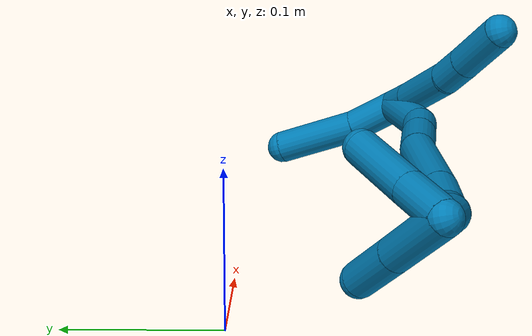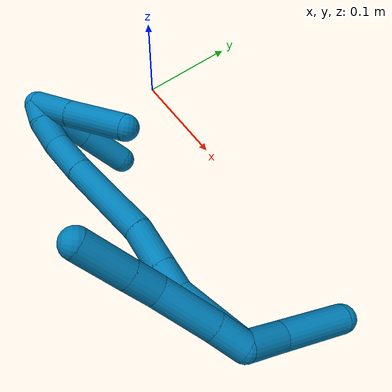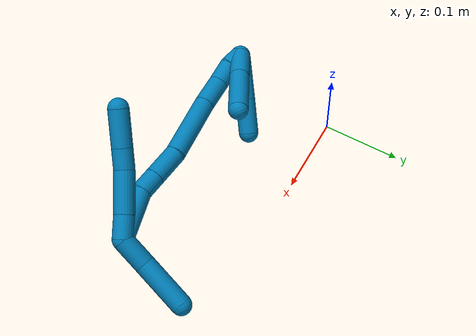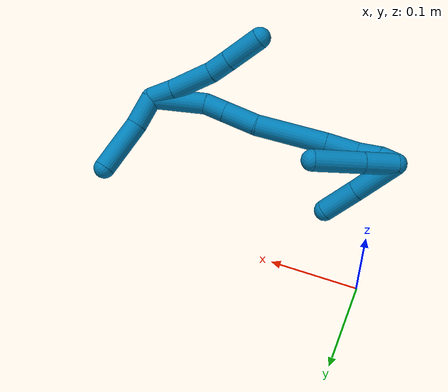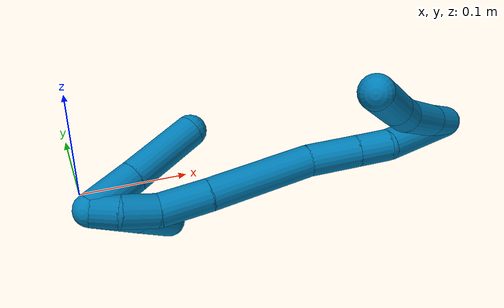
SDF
<sdf version="1.7">
 <world name="default">
  <model name="9">
   <static>0</static>
   <link name="9">
    <collision name="collision-cylinder-e_1_2_8">
     <pose>-0.005583 -0.004019 -0.012532 2.83126 -0.40117 -1.83006</pose>
     <geometry><cylinder><radius>0.0125</radius><length>0.028592</length></cylinder></geometry>
     <surface>
      <friction><ode><mu>1.16</mu><mu2>1.16</mu2><slip1>0</slip1><slip2>0</slip2></ode></friction>
      <contact><ode><kp>1e+06</kp><kd>1</kd><max_vel>0</max_vel><min_depth>0.001</min_depth></ode></contact>
     </surface>
    </collision>
    <visual name="visual-cylinder-e_1_2_8">
     <pose>-0.005583 -0.004019 -0.012532 2.83126 -0.40117 -1.83006</pose>
     <geometry><cylinder><radius>0.0125</radius><length>0.028592</length></cylinder></geometry>
     <material><ambient>0 0.490196 0.709804 1</ambient></material>
    </visual>
    <collision name="collision-cylinder-e_2_8_9">
     <pose>-0.019502 -0.015742 -0.048061 2.81836 -0.331111 -1.5953</pose>
     <geometry><cylinder><radius>0.0125</radius><length>0.051291</length></cylinder></geometry>
     <surface>
      <friction><ode><mu>1.16</mu><mu2>1.16</mu2><slip1>0</slip1><slip2>0</slip2></ode></friction>
      <contact><ode><kp>1e+06</kp><kd>1</kd><max_vel>0</max_vel><min_depth>0.001</min_depth></ode></contact>
     </surface>
    </collision>
    <visual name="visual-cylinder-e_2_8_9">
     <pose>-0.019502 -0.015742 -0.048061 2.81836 -0.331111 -1.5953</pose>
     <geometry><cylinder><radius>0.0125</radius><length>0.051291</length></cylinder></geometry>
     <material><ambient>0 0.490196 0.709804 1</ambient></material>
    </visual>
    <collision name="collision-cylinder-e_3_9_10">
     <pose>-0.030087 -0.028365 -0.082525 2.73633 -0.178173 -0.820227</pose>
     <geometry><cylinder><radius>0.0125</radius><length>0.025357</length></cylinder></geometry>
     <surface>
      <friction><ode><mu>1.16</mu><mu2>1.16</mu2><slip1>0</slip1><slip2>0</slip2></ode></friction>
      <contact><ode><kp>1e+06</kp><kd>1</kd><max_vel>0</max_vel><min_depth>0.001</min_depth></ode></contact>
     </surface>
    </collision>
    <visual name="visual-cylinder-e_3_9_10">
     <pose>-0.030087 -0.028365 -0.082525 2.73633 -0.178173 -0.820227</pose>
     <geometry><cylinder><radius>0.0125</radius><length>0.025357</length></cylinder></geometry>
     <material><ambient>0 0.490196 0.709804 1</ambient></material>
    </visual>
    <collision name="collision-cylinder-e_4_10_6">
     <pose>-0.036056 -0.04237 -0.114103 2.71724 -0.167093 -0.741515</pose>
     <geometry><cylinder><radius>0.0125</radius><length>0.044759</length></cylinder></geometry>
     <surface>
      <friction><ode><mu>1.16</mu><mu2>1.16</mu2><slip1>0</slip1><slip2>0</slip2></ode></friction>
      <contact><ode><kp>1e+06</kp><kd>1</kd><max_vel>0</max_vel><min_depth>0.001</min_depth></ode></contact>
     </surface>
    </collision>
    <visual name="visual-cylinder-e_4_10_6">
     <pose>-0.036056 -0.04237 -0.114103 2.71724 -0.167093 -0.741515</pose>
     <geometry><cylinder><radius>0.0125</radius><length>0.044759</length></cylinder></geometry>
     <material><ambient>0 0.490196 0.709804 1</ambient></material>
    </visual>
    <collision name="collision-cylinder-e_1_2_11">
     <pose>-0.006485 0.001266 0.017201 -0.073471 -0.359626 0.013361</pose>
     <geometry><cylinder><radius>0.0125</radius><length>0.036853</length></cylinder></geometry>
     <surface>
      <friction><ode><mu>1.16</mu><mu2>1.16</mu2><slip1>0</slip1><slip2>0</slip2></ode></friction>
      <contact><ode><kp>1e+06</kp><kd>1</kd><max_vel>0</max_vel><min_depth>0.001</min_depth></ode></contact>
     </surface>
    </collision>
    <visual name="visual-cylinder-e_1_2_11">
     <pose>-0.006485 0.001266 0.017201 -0.073471 -0.359626 0.013361</pose>
     <geometry><cylinder><radius>0.0125</radius><length>0.036853</length></cylinder></geometry>
     <material><ambient>0 0.490196 0.709804 1</ambient></material>
    </visual>
    <collision name="collision-cylinder-e_2_11_5">
     <pose>-0.021567 -0.000146 0.064664 0.088277 -0.275795 -0.012259</pose>
     <geometry><cylinder><radius>0.0125</radius><length>0.063147</length></cylinder></geometry>
     <surface>
      <friction><ode><mu>1.16</mu><mu2>1.16</mu2><slip1>0</slip1><slip2>0</slip2></ode></friction>
      <contact><ode><kp>1e+06</kp><kd>1</kd><max_vel>0</max_vel><min_depth>0.001</min_depth></ode></contact>
     </surface>
    </collision>
    <visual name="visual-cylinder-e_2_11_5">
     <pose>-0.021567 -0.000146 0.064664 0.088277 -0.275795 -0.012259</pose>
     <geometry><cylinder><radius>0.0125</radius><length>0.063147</length></cylinder></geometry>
     <material><ambient>0 0.490196 0.709804 1</ambient></material>
    </visual>
    <collision name="collision-cylinder-e_1_2_12">
     <pose>-0.023498 -0.000369 -0.022235 3.125 -0.812933 -3.10304</pose>
     <geometry><cylinder><radius>0.0125</radius><length>0.064705</length></cylinder></geometry>
     <surface>
      <friction><ode><mu>1.16</mu><mu2>1.16</mu2><slip1>0</slip1><slip2>0</slip2></ode></friction>
      <contact><ode><kp>1e+06</kp><kd>1</kd><max_vel>0</max_vel><min_depth>0.001</min_depth></ode></contact>
     </surface>
    </collision>
    <visual name="visual-cylinder-e_1_2_12">
     <pose>-0.023498 -0.000369 -0.022235 3.125 -0.812933 -3.10304</pose>
     <geometry><cylinder><radius>0.0125</radius><length>0.064705</length></cylinder></geometry>
     <material><ambient>0 0.490196 0.709804 1</ambient></material>
    </visual>
    <collision name="collision-cylinder-e_2_12_13">
     <pose>-0.058695 -0.002357 -0.049929 2.85324 -1.11788 -2.68543</pose>
     <geometry><cylinder><radius>0.0125</radius><length>0.026022</length></cylinder></geometry>
     <surface>
      <friction><ode><mu>1.16</mu><mu2>1.16</mu2><slip1>0</slip1><slip2>0</slip2></ode></friction>
      <contact><ode><kp>1e+06</kp><kd>1</kd><max_vel>0</max_vel><min_depth>0.001</min_depth></ode></contact>
     </surface>
    </collision>
    <visual name="visual-cylinder-e_2_12_13">
     <pose>-0.058695 -0.002357 -0.049929 2.85324 -1.11788 -2.68543</pose>
     <geometry><cylinder><radius>0.0125</radius><length>0.026022</length></cylinder></geometry>
     <material><ambient>0 0.490196 0.709804 1</ambient></material>
    </visual>
    <collision name="collision-cylinder-e_3_13_14">
     <pose>-0.088467 -0.006544 -0.063866 2.84752 -1.11502 -2.67515</pose>
     <geometry><cylinder><radius>0.0125</radius><length>0.040254</length></cylinder></geometry>
     <surface>
      <friction><ode><mu>1.16</mu><mu2>1.16</mu2><slip1>0</slip1><slip2>0</slip2></ode></friction>
      <contact><ode><kp>1e+06</kp><kd>1</kd><max_vel>0</max_vel><min_depth>0.001</min_depth></ode></contact>
     </surface>
    </collision>
    <visual name="visual-cylinder-e_3_13_14">
     <pose>-0.088467 -0.006544 -0.063866 2.84752 -1.11502 -2.67515</pose>
     <geometry><cylinder><radius>0.0125</radius><length>0.040254</length></cylinder></geometry>
     <material><ambient>0 0.490196 0.709804 1</ambient></material>
    </visual>
    <collision name="collision-cylinder-e_4_14_15">
     <pose>-0.140649 -0.010037 -0.095856 3.10225 -0.966937 -3.06669</pose>
     <geometry><cylinder><radius>0.0125</radius><length>0.082877</length></cylinder></geometry>
     <surface>
      <friction><ode><mu>1.16</mu><mu2>1.16</mu2><slip1>0</slip1><slip2>0</slip2></ode></friction>
      <contact><ode><kp>1e+06</kp><kd>1</kd><max_vel>0</max_vel><min_depth>0.001</min_depth></ode></contact>
     </surface>
    </collision>
    <visual name="visual-cylinder-e_4_14_15">
     <pose>-0.140649 -0.010037 -0.095856 3.10225 -0.966937 -3.06669</pose>
     <geometry><cylinder><radius>0.0125</radius><length>0.082877</length></cylinder></geometry>
     <material><ambient>0 0.490196 0.709804 1</ambient></material>
    </visual>
    <collision name="collision-cylinder-e_5_15_16">
     <pose>-0.191173 -0.011869 -0.129527 3.05263 -1.01477 -2.9818</pose>
     <geometry><cylinder><radius>0.0125</radius><length>0.03865</length></cylinder></geometry>
     <surface>
      <friction><ode><mu>1.16</mu><mu2>1.16</mu2><slip1>0</slip1><slip2>0</slip2></ode></friction>
      <contact><ode><kp>1e+06</kp><kd>1</kd><max_vel>0</max_vel><min_depth>0.001</min_depth></ode></contact>
     </surface>
    </collision>
    <visual name="visual-cylinder-e_5_15_16">
     <pose>-0.191173 -0.011869 -0.129527 3.05263 -1.01477 -2.9818</pose>
     <geometry><cylinder><radius>0.0125</radius><length>0.03865</length></cylinder></geometry>
     <material><ambient>0 0.490196 0.709804 1</ambient></material>
    </visual>
    <collision name="collision-cylinder-e_6_16_17">
     <pose>-0.218176 -0.017172 -0.147215 2.61298 -0.882055 -2.10042</pose>
     <geometry><cylinder><radius>0.0125</radius><length>0.027432</length></cylinder></geometry>
     <surface>
      <friction><ode><mu>1.16</mu><mu2>1.16</mu2><slip1>0</slip1><slip2>0</slip2></ode></friction>
      <contact><ode><kp>1e+06</kp><kd>1</kd><max_vel>0</max_vel><min_depth>0.001</min_depth></ode></contact>
     </surface>
    </collision>
    <visual name="visual-cylinder-e_6_16_17">
     <pose>-0.218176 -0.017172 -0.147215 2.61298 -0.882055 -2.10042</pose>
     <geometry><cylinder><radius>0.0125</radius><length>0.027432</length></cylinder></geometry>
     <material><ambient>0 0.490196 0.709804 1</ambient></material>
    </visual>
    <collision name="collision-cylinder-e_7_17_1">
     <pose>-0.23746 -0.025373 -0.157988 2.27704 -1.04886 -1.79504</pose>
     <geometry><cylinder><radius>0.0125</radius><length>0.02006</length></cylinder></geometry>
     <surface>
      <friction><ode><mu>1.16</mu><mu2>1.16</mu2><slip1>0</slip1><slip2>0</slip2></ode></friction>
      <contact><ode><kp>1e+06</kp><kd>1</kd><max_vel>0</max_vel><min_depth>0.001</min_depth></ode></contact>
     </surface>
    </collision>
    <visual name="visual-cylinder-e_7_17_1">
     <pose>-0.23746 -0.025373 -0.157988 2.27704 -1.04886 -1.79504</pose>
     <geometry><cylinder><radius>0.0125</radius><length>0.02006</length></cylinder></geometry>
     <material><ambient>0 0.490196 0.709804 1</ambient></material>
    </visual>
    <collision name="collision-cylinder-e_1_1_18">
     <pose>-0.24241 -0.017956 -0.136033 -0.418936 0.134913 -0.028722</pose>
     <geometry><cylinder><radius>0.0125</radius><length>0.055678</length></cylinder></geometry>
     <surface>
      <friction><ode><mu>1.16</mu><mu2>1.16</mu2><slip1>0</slip1><slip2>0</slip2></ode></friction>
      <contact><ode><kp>1e+06</kp><kd>1</kd><max_vel>0</max_vel><min_depth>0.001</min_depth></ode></contact>
     </surface>
    </collision>
    <visual name="visual-cylinder-e_1_1_18">
     <pose>-0.24241 -0.017956 -0.136033 -0.418936 0.134913 -0.028722</pose>
     <geometry><cylinder><radius>0.0125</radius><length>0.055678</length></cylinder></geometry>
     <material><ambient>0 0.490196 0.709804 1</ambient></material>
    </visual>
    <collision name="collision-cylinder-e_2_18_4">
     <pose>-0.23532 0.002128 -0.090797 -0.416445 0.151544 -0.032078</pose>
     <geometry><cylinder><radius>0.0125</radius><length>0.044322</length></cylinder></geometry>
     <surface>
      <friction><ode><mu>1.16</mu><mu2>1.16</mu2><slip1>0</slip1><slip2>0</slip2></ode></friction>
      <contact><ode><kp>1e+06</kp><kd>1</kd><max_vel>0</max_vel><min_depth>0.001</min_depth></ode></contact>
     </surface>
    </collision>
    <visual name="visual-cylinder-e_2_18_4">
     <pose>-0.23532 0.002128 -0.090797 -0.416445 0.151544 -0.032078</pose>
     <geometry><cylinder><radius>0.0125</radius><length>0.044322</length></cylinder></geometry>
     <material><ambient>0 0.490196 0.709804 1</ambient></material>
    </visual>
    <collision name="collision-cylinder-e_1_1_19">
     <pose>-0.233933 -0.03446 -0.146512 0.344564 0.66333 0.119708</pose>
     <geometry><cylinder><radius>0.0125</radius><length>0.039697</length></cylinder></geometry>
     <surface>
      <friction><ode><mu>1.16</mu><mu2>1.16</mu2><slip1>0</slip1><slip2>0</slip2></ode></friction>
      <contact><ode><kp>1e+06</kp><kd>1</kd><max_vel>0</max_vel><min_depth>0.001</min_depth></ode></contact>
     </surface>
    </collision>
    <visual name="visual-cylinder-e_1_1_19">
     <pose>-0.233933 -0.03446 -0.146512 0.344564 0.66333 0.119708</pose>
     <geometry><cylinder><radius>0.0125</radius><length>0.039697</length></cylinder></geometry>
     <material><ambient>0 0.490196 0.709804 1</ambient></material>
    </visual>
    <collision name="collision-cylinder-e_2_19_3">
     <pose>-0.203241 -0.048517 -0.109635 0.377062 0.659352 0.130382</pose>
     <geometry><cylinder><radius>0.0125</radius><length>0.060303</length></cylinder></geometry>
     <surface>
      <friction><ode><mu>1.16</mu><mu2>1.16</mu2><slip1>0</slip1><slip2>0</slip2></ode></friction>
      <contact><ode><kp>1e+06</kp><kd>1</kd><max_vel>0</max_vel><min_depth>0.001</min_depth></ode></contact>
     </surface>
    </collision>
    <visual name="visual-cylinder-e_2_19_3">
     <pose>-0.203241 -0.048517 -0.109635 0.377062 0.659352 0.130382</pose>
     <geometry><cylinder><radius>0.0125</radius><length>0.060303</length></cylinder></geometry>
     <material><ambient>0 0.490196 0.709804 1</ambient></material>
    </visual>
    <collision name="collision-sphere-3">
     <pose>-0.18477 -0.057292 -0.087478 0 -0 0</pose>
     <geometry><sphere><radius>0.0125</radius></sphere></geometry>
     <surface>
      <friction><ode><mu>1.16</mu><mu2>1.16</mu2><slip1>0</slip1><slip2>0</slip2></ode></friction>
      <contact><ode><kp>1e+06</kp><kd>1</kd><max_vel>0</max_vel><min_depth>0.001</min_depth></ode></contact>
     </surface>
    </collision>
    <visual name="visual-sphere-3">
     <pose>-0.18477 -0.057292 -0.087478 0 -0 0</pose>
     <geometry><sphere><radius>0.0125</radius></sphere></geometry>
     <material><ambient>0 0.490196 0.709804 1</ambient></material>
    </visual>
    <collision name="collision-sphere-19">
     <pose>-0.221711 -0.039743 -0.131792 0 -0 0</pose>
     <geometry><sphere><radius>0.0125</radius></sphere></geometry>
     <surface>
      <friction><ode><mu>1.16</mu><mu2>1.16</mu2><slip1>0</slip1><slip2>0</slip2></ode></friction>
      <contact><ode><kp>1e+06</kp><kd>1</kd><max_vel>0</max_vel><min_depth>0.001</min_depth></ode></contact>
     </surface>
    </collision>
    <visual name="visual-sphere-19">
     <pose>-0.221711 -0.039743 -0.131792 0 -0 0</pose>
     <geometry><sphere><radius>0.0125</radius></sphere></geometry>
     <material><ambient>0 0.490196 0.709804 1</ambient></material>
    </visual>
    <collision name="collision-sphere-11">
     <pose>-0.01297 0.002532 0.034403 0 -0 0</pose>
     <geometry><sphere><radius>0.0125</radius></sphere></geometry>
     <surface>
      <friction><ode><mu>1.16</mu><mu2>1.16</mu2><slip1>0</slip1><slip2>0</slip2></ode></friction>
      <contact><ode><kp>1e+06</kp><kd>1</kd><max_vel>0</max_vel><min_depth>0.001</min_depth></ode></contact>
     </surface>
    </collision>
    <visual name="visual-sphere-11">
     <pose>-0.01297 0.002532 0.034403 0 -0 0</pose>
     <geometry><sphere><radius>0.0125</radius></sphere></geometry>
     <material><ambient>0 0.490196 0.709804 1</ambient></material>
    </visual>
    <collision name="collision-sphere-6">
     <pose>-0.039778 -0.051456 -0.134214 0 -0 0</pose>
     <geometry><sphere><radius>0.0125</radius></sphere></geometry>
     <surface>
      <friction><ode><mu>1.16</mu><mu2>1.16</mu2><slip1>0</slip1><slip2>0</slip2></ode></friction>
      <contact><ode><kp>1e+06</kp><kd>1</kd><max_vel>0</max_vel><min_depth>0.001</min_depth></ode></contact>
     </surface>
    </collision>
    <visual name="visual-sphere-6">
     <pose>-0.039778 -0.051456 -0.134214 0 -0 0</pose>
     <geometry><sphere><radius>0.0125</radius></sphere></geometry>
     <material><ambient>0 0.490196 0.709804 1</ambient></material>
    </visual>
    <collision name="collision-sphere-10">
     <pose>-0.032334 -0.033284 -0.093992 0 -0 0</pose>
     <geometry><sphere><radius>0.0125</radius></sphere></geometry>
     <surface>
      <friction><ode><mu>1.16</mu><mu2>1.16</mu2><slip1>0</slip1><slip2>0</slip2></ode></friction>
      <contact><ode><kp>1e+06</kp><kd>1</kd><max_vel>0</max_vel><min_depth>0.001</min_depth></ode></contact>
     </surface>
    </collision>
    <visual name="visual-sphere-10">
     <pose>-0.032334 -0.033284 -0.093992 0 -0 0</pose>
     <geometry><sphere><radius>0.0125</radius></sphere></geometry>
     <material><ambient>0 0.490196 0.709804 1</ambient></material>
    </visual>
    <collision name="collision-sphere-9">
     <pose>-0.02784 -0.023445 -0.071058 0 -0 0</pose>
     <geometry><sphere><radius>0.0125</radius></sphere></geometry>
     <surface>
      <friction><ode><mu>1.16</mu><mu2>1.16</mu2><slip1>0</slip1><slip2>0</slip2></ode></friction>
      <contact><ode><kp>1e+06</kp><kd>1</kd><max_vel>0</max_vel><min_depth>0.001</min_depth></ode></contact>
     </surface>
    </collision>
    <visual name="visual-sphere-9">
     <pose>-0.02784 -0.023445 -0.071058 0 -0 0</pose>
     <geometry><sphere><radius>0.0125</radius></sphere></geometry>
     <material><ambient>0 0.490196 0.709804 1</ambient></material>
    </visual>
    <collision name="collision-sphere-2">
     <geometry><sphere><radius>0.0125</radius></sphere></geometry>
     <surface>
      <friction><ode><mu>1.16</mu><mu2>1.16</mu2><slip1>0</slip1><slip2>0</slip2></ode></friction>
      <contact><ode><kp>1e+06</kp><kd>1</kd><max_vel>0</max_vel><min_depth>0.001</min_depth></ode></contact>
     </surface>
    </collision>
    <visual name="visual-sphere-2">
     <geometry><sphere><radius>0.0125</radius></sphere></geometry>
     <material><ambient>0 0.490196 0.709804 1</ambient></material>
    </visual>
    <collision name="collision-sphere-8">
     <pose>-0.011165 -0.008038 -0.025065 0 -0 0</pose>
     <geometry><sphere><radius>0.0125</radius></sphere></geometry>
     <surface>
      <friction><ode><mu>1.16</mu><mu2>1.16</mu2><slip1>0</slip1><slip2>0</slip2></ode></friction>
      <contact><ode><kp>1e+06</kp><kd>1</kd><max_vel>0</max_vel><min_depth>0.001</min_depth></ode></contact>
     </surface>
    </collision>
    <visual name="visual-sphere-8">
     <pose>-0.011165 -0.008038 -0.025065 0 -0 0</pose>
     <geometry><sphere><radius>0.0125</radius></sphere></geometry>
     <material><ambient>0 0.490196 0.709804 1</ambient></material>
    </visual>
    <collision name="collision-sphere-5">
     <pose>-0.030165 -0.002825 0.094926 0 -0 0</pose>
     <geometry><sphere><radius>0.0125</radius></sphere></geometry>
     <surface>
      <friction><ode><mu>1.16</mu><mu2>1.16</mu2><slip1>0</slip1><slip2>0</slip2></ode></friction>
      <contact><ode><kp>1e+06</kp><kd>1</kd><max_vel>0</max_vel><min_depth>0.001</min_depth></ode></contact>
     </surface>
    </collision>
    <visual name="visual-sphere-5">
     <pose>-0.030165 -0.002825 0.094926 0 -0 0</pose>
     <geometry><sphere><radius>0.0125</radius></sphere></geometry>
     <material><ambient>0 0.490196 0.709804 1</ambient></material>
    </visual>
    <collision name="collision-sphere-12">
     <pose>-0.046996 -0.000738 -0.044471 0 -0 0</pose>
     <geometry><sphere><radius>0.0125</radius></sphere></geometry>
     <surface>
      <friction><ode><mu>1.16</mu><mu2>1.16</mu2><slip1>0</slip1><slip2>0</slip2></ode></friction>
      <contact><ode><kp>1e+06</kp><kd>1</kd><max_vel>0</max_vel><min_depth>0.001</min_depth></ode></contact>
     </surface>
    </collision>
    <visual name="visual-sphere-12">
     <pose>-0.046996 -0.000738 -0.044471 0 -0 0</pose>
     <geometry><sphere><radius>0.0125</radius></sphere></geometry>
     <material><ambient>0 0.490196 0.709804 1</ambient></material>
    </visual>
    <collision name="collision-sphere-13">
     <pose>-0.070394 -0.003976 -0.055387 0 -0 0</pose>
     <geometry><sphere><radius>0.0125</radius></sphere></geometry>
     <surface>
      <friction><ode><mu>1.16</mu><mu2>1.16</mu2><slip1>0</slip1><slip2>0</slip2></ode></friction>
      <contact><ode><kp>1e+06</kp><kd>1</kd><max_vel>0</max_vel><min_depth>0.001</min_depth></ode></contact>
     </surface>
    </collision>
    <visual name="visual-sphere-13">
     <pose>-0.070394 -0.003976 -0.055387 0 -0 0</pose>
     <geometry><sphere><radius>0.0125</radius></sphere></geometry>
     <material><ambient>0 0.490196 0.709804 1</ambient></material>
    </visual>
    <collision name="collision-sphere-14">
     <pose>-0.106539 -0.009112 -0.072345 0 -0 0</pose>
     <geometry><sphere><radius>0.0125</radius></sphere></geometry>
     <surface>
      <friction><ode><mu>1.16</mu><mu2>1.16</mu2><slip1>0</slip1><slip2>0</slip2></ode></friction>
      <contact><ode><kp>1e+06</kp><kd>1</kd><max_vel>0</max_vel><min_depth>0.001</min_depth></ode></contact>
     </surface>
    </collision>
    <visual name="visual-sphere-14">
     <pose>-0.106539 -0.009112 -0.072345 0 -0 0</pose>
     <geometry><sphere><radius>0.0125</radius></sphere></geometry>
     <material><ambient>0 0.490196 0.709804 1</ambient></material>
    </visual>
    <collision name="collision-sphere-15">
     <pose>-0.174759 -0.010963 -0.119368 0 -0 0</pose>
     <geometry><sphere><radius>0.0125</radius></sphere></geometry>
     <surface>
      <friction><ode><mu>1.16</mu><mu2>1.16</mu2><slip1>0</slip1><slip2>0</slip2></ode></friction>
      <contact><ode><kp>1e+06</kp><kd>1</kd><max_vel>0</max_vel><min_depth>0.001</min_depth></ode></contact>
     </surface>
    </collision>
    <visual name="visual-sphere-15">
     <pose>-0.174759 -0.010963 -0.119368 0 -0 0</pose>
     <geometry><sphere><radius>0.0125</radius></sphere></geometry>
     <material><ambient>0 0.490196 0.709804 1</ambient></material>
    </visual>
    <collision name="collision-sphere-16">
     <pose>-0.207587 -0.012775 -0.139687 0 -0 0</pose>
     <geometry><sphere><radius>0.0125</radius></sphere></geometry>
     <surface>
      <friction><ode><mu>1.16</mu><mu2>1.16</mu2><slip1>0</slip1><slip2>0</slip2></ode></friction>
      <contact><ode><kp>1e+06</kp><kd>1</kd><max_vel>0</max_vel><min_depth>0.001</min_depth></ode></contact>
     </surface>
    </collision>
    <visual name="visual-sphere-16">
     <pose>-0.207587 -0.012775 -0.139687 0 -0 0</pose>
     <geometry><sphere><radius>0.0125</radius></sphere></geometry>
     <material><ambient>0 0.490196 0.709804 1</ambient></material>
    </visual>
    <collision name="collision-sphere-17">
     <pose>-0.228766 -0.021568 -0.154742 0 -0 0</pose>
     <geometry><sphere><radius>0.0125</radius></sphere></geometry>
     <surface>
      <friction><ode><mu>1.16</mu><mu2>1.16</mu2><slip1>0</slip1><slip2>0</slip2></ode></friction>
      <contact><ode><kp>1e+06</kp><kd>1</kd><max_vel>0</max_vel><min_depth>0.001</min_depth></ode></contact>
     </surface>
    </collision>
    <visual name="visual-sphere-17">
     <pose>-0.228766 -0.021568 -0.154742 0 -0 0</pose>
     <geometry><sphere><radius>0.0125</radius></sphere></geometry>
     <material><ambient>0 0.490196 0.709804 1</ambient></material>
    </visual>
    <collision name="collision-sphere-1">
     <pose>-0.246155 -0.029177 -0.161233 0 -0 0</pose>
     <geometry><sphere><radius>0.0125</radius></sphere></geometry>
     <surface>
      <friction><ode><mu>1.16</mu><mu2>1.16</mu2><slip1>0</slip1><slip2>0</slip2></ode></friction>
      <contact><ode><kp>1e+06</kp><kd>1</kd><max_vel>0</max_vel><min_depth>0.001</min_depth></ode></contact>
     </surface>
    </collision>
    <visual name="visual-sphere-1">
     <pose>-0.246155 -0.029177 -0.161233 0 -0 0</pose>
     <geometry><sphere><radius>0.0125</radius></sphere></geometry>
     <material><ambient>0 0.490196 0.709804 1</ambient></material>
    </visual>
    <collision name="collision-sphere-18">
     <pose>-0.238666 -0.006734 -0.110832 0 -0 0</pose>
     <geometry><sphere><radius>0.0125</radius></sphere></geometry>
     <surface>
      <friction><ode><mu>1.16</mu><mu2>1.16</mu2><slip1>0</slip1><slip2>0</slip2></ode></friction>
      <contact><ode><kp>1e+06</kp><kd>1</kd><max_vel>0</max_vel><min_depth>0.001</min_depth></ode></contact>
     </surface>
    </collision>
    <visual name="visual-sphere-18">
     <pose>-0.238666 -0.006734 -0.110832 0 -0 0</pose>
     <geometry><sphere><radius>0.0125</radius></sphere></geometry>
     <material><ambient>0 0.490196 0.709804 1</ambient></material>
    </visual>
    <collision name="collision-sphere-4">
     <pose>-0.231975 0.01099 -0.070762 0 -0 0</pose>
     <geometry><sphere><radius>0.0125</radius></sphere></geometry>
     <surface>
      <friction><ode><mu>1.16</mu><mu2>1.16</mu2><slip1>0</slip1><slip2>0</slip2></ode></friction>
      <contact><ode><kp>1e+06</kp><kd>1</kd><max_vel>0</max_vel><min_depth>0.001</min_depth></ode></contact>
     </surface>
    </collision>
    <visual name="visual-sphere-4">
     <pose>-0.231975 0.01099 -0.070762 0 -0 0</pose>
     <geometry><sphere><radius>0.0125</radius></sphere></geometry>
     <material><ambient>0 0.490196 0.709804 1</ambient></material>
    </visual>
    <inertial>
     <pose>-0.116013 -0.015092 -0.073065 0 -0 0</pose>
     <mass>0.75</mass>
     <inertia><ixx>-2e-05</ixx><ixy>0</ixy><ixz>0</ixz><iyy>0.000134</iyy><iyz>0</iyz><izz>8.3e-05</izz></inertia>
    </inertial>
   </link>
   <pose>0.294114 -0.116624 0.079856 -1.92412 -0.359631 -0.455621</pose>
  </model>
 </world>
</sdf>
